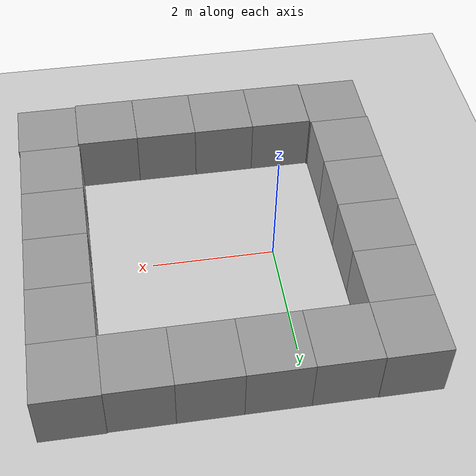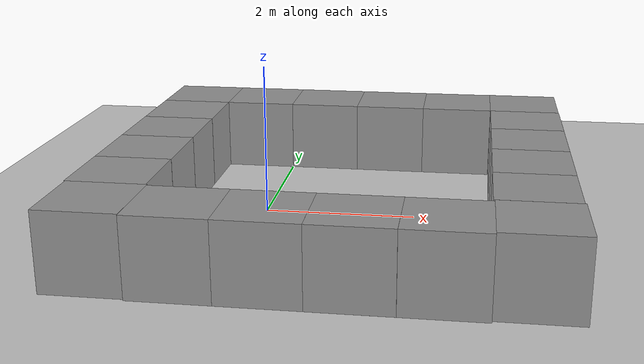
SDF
<sdf version="1.7">
 <world name="default">
  <light name="sun" type="directional">
   <pose>0 0 10 0 -0 0</pose>
   <diffuse>0.8 0.8 0.8 1</diffuse>
   <specular>0.2 0.2 0.2 1</specular>
   <attenuation>
    <range>1000</range>
    <constant>0.9</constant>
    <linear>0.01</linear>
    <quadratic>0.001</quadratic>
   </attenuation>
   <direction>-0.5 0.1 -0.9</direction>
   <spot><inner_angle>0</inner_angle><outer_angle>0</outer_angle><falloff>0</falloff></spot>
  </light>
  <model name="ground_plane">
   <static>1</static>
   <link name="link">
    <collision name="collision">
     <geometry><plane><normal>0 0 1</normal><size>100 100</size></plane></geometry>
     <surface><friction><ode><mu>100</mu><mu2>50</mu2></ode></friction></surface>
    </collision>
    <visual name="visual">
     <cast_shadows>0</cast_shadows>
     <geometry><plane><normal>0 0 1</normal><size>100 100</size></plane></geometry>
     <material>
      <script><uri>file://media/materials/scripts/gazebo.material</uri><name>Gazebo/Grey</name></script>
     </material>
    </visual>
   </link>
  </model>
  <gravity>0 0 -9.8</gravity>
  <magnetic_field>6e-06 2.3e-05 -4.2e-05</magnetic_field>
  <atmosphere type="adiabatic"/>
  <physics type="ode">
   <max_step_size>0.001</max_step_size>
   <real_time_factor>1</real_time_factor>
   <real_time_update_rate>1000</real_time_update_rate>
  </physics>
  <scene><ambient>0.4 0.4 0.4 1</ambient><background>0.7 0.7 0.7 1</background><shadows>1</shadows></scene>
  <spherical_coordinates>
   <surface_model>EARTH_WGS84</surface_model>
   <latitude_deg>0</latitude_deg>
   <longitude_deg>0</longitude_deg>
   <elevation>0</elevation>
   <heading_deg>0</heading_deg>
  </spherical_coordinates>
  <model name="unit_box">
   <pose>2.49532 2.51337 0.5 0 -0 0.000409</pose>
   <link name="link">
    <inertial>
     <mass>1</mass>
     <inertia>
      <ixx>0.166667</ixx>
      <ixy>0</ixy>
      <ixz>0</ixz>
      <iyy>0.166667</iyy>
      <iyz>0</iyz>
      <izz>0.166667</izz>
     </inertia>
    </inertial>
    <collision name="collision"><geometry><box><size>1 1 1</size></box></geometry></collision>
    <visual name="visual">
     <geometry><box><size>1 1 1</size></box></geometry>
     <material>
      <script><name>Gazebo/Grey</name><uri>file://media/materials/scripts/gazebo.material</uri></script>
     </material>
    </visual>
   </link>
  </model>
  <model name="unit_box_0">
   <pose>1.49531 2.5126 0.499995 1e-05 -0 0.000439</pose>
   <link name="link">
    <inertial>
     <mass>1</mass>
     <inertia>
      <ixx>0.166667</ixx>
      <ixy>0</ixy>
      <ixz>0</ixz>
      <iyy>0.166667</iyy>
      <iyz>0</iyz>
      <izz>0.166667</izz>
     </inertia>
    </inertial>
    <collision name="collision"><geometry><box><size>1 1 1</size></box></geometry></collision>
    <visual name="visual">
     <geometry><box><size>1 1 1</size></box></geometry>
     <material>
      <script><name>Gazebo/Grey</name><uri>file://media/materials/scripts/gazebo.material</uri></script>
     </material>
    </visual>
   </link>
  </model>
  <model name="unit_box_1">
   <pose>0.495288 2.51126 0.499995 1e-05 -0 0.000467</pose>
   <link name="link">
    <inertial>
     <mass>1</mass>
     <inertia>
      <ixx>0.166667</ixx>
      <ixy>0</ixy>
      <ixz>0</ixz>
      <iyy>0.166667</iyy>
      <iyz>0</iyz>
      <izz>0.166667</izz>
     </inertia>
    </inertial>
    <collision name="collision"><geometry><box><size>1 1 1</size></box></geometry></collision>
    <visual name="visual">
     <geometry><box><size>1 1 1</size></box></geometry>
     <material>
      <script><name>Gazebo/Grey</name><uri>file://media/materials/scripts/gazebo.material</uri></script>
     </material>
    </visual>
   </link>
  </model>
  <model name="unit_box_2">
   <pose>-0.50481 2.5103 0.5 0 -0 0.000654</pose>
   <link name="link">
    <inertial>
     <mass>1</mass>
     <inertia>
      <ixx>0.166667</ixx>
      <ixy>0</ixy>
      <ixz>0</ixz>
      <iyy>0.166667</iyy>
      <iyz>0</iyz>
      <izz>0.166667</izz>
     </inertia>
    </inertial>
    <collision name="collision"><geometry><box><size>1 1 1</size></box></geometry></collision>
    <visual name="visual">
     <geometry><box><size>1 1 1</size></box></geometry>
     <material>
      <script><name>Gazebo/Grey</name><uri>file://media/materials/scripts/gazebo.material</uri></script>
     </material>
    </visual>
   </link>
  </model>
  <model name="unit_box_3">
   <pose>3.49532 2.5257 0.5 0 -0 0.000405</pose>
   <link name="link">
    <inertial>
     <mass>1</mass>
     <inertia>
      <ixx>0.166667</ixx>
      <ixy>0</ixy>
      <ixz>0</ixz>
      <iyy>0.166667</iyy>
      <iyz>0</iyz>
      <izz>0.166667</izz>
     </inertia>
    </inertial>
    <collision name="collision"><geometry><box><size>1 1 1</size></box></geometry></collision>
    <visual name="visual">
     <geometry><box><size>1 1 1</size></box></geometry>
     <material>
      <script><name>Gazebo/Grey</name><uri>file://media/materials/scripts/gazebo.material</uri></script>
     </material>
    </visual>
   </link>
  </model>
  <model name="unit_box_4">
   <pose>3.49941 1.52565 0.499995 -0 -1e-05 0.000444</pose>
   <link name="link">
    <inertial>
     <mass>1</mass>
     <inertia>
      <ixx>0.166667</ixx>
      <ixy>0</ixy>
      <ixz>0</ixz>
      <iyy>0.166667</iyy>
      <iyz>0</iyz>
      <izz>0.166667</izz>
     </inertia>
    </inertial>
    <collision name="collision"><geometry><box><size>1 1 1</size></box></geometry></collision>
    <visual name="visual">
     <geometry><box><size>1 1 1</size></box></geometry>
     <material>
      <script><name>Gazebo/Grey</name><uri>file://media/materials/scripts/gazebo.material</uri></script>
     </material>
    </visual>
   </link>
  </model>
  <model name="unit_box_5">
   <pose>3.49911 0.525642 0.499995 -1e-05 0 0.000458</pose>
   <link name="link">
    <inertial>
     <mass>1</mass>
     <inertia>
      <ixx>0.166667</ixx>
      <ixy>0</ixy>
      <ixz>0</ixz>
      <iyy>0.166667</iyy>
      <iyz>0</iyz>
      <izz>0.166667</izz>
     </inertia>
    </inertial>
    <collision name="collision"><geometry><box><size>1 1 1</size></box></geometry></collision>
    <visual name="visual">
     <geometry><box><size>1 1 1</size></box></geometry>
     <material>
      <script><name>Gazebo/Grey</name><uri>file://media/materials/scripts/gazebo.material</uri></script>
     </material>
    </visual>
   </link>
  </model>
  <model name="unit_box_6">
   <pose>3.49918 -0.474371 0.5 0 -0 0.000464</pose>
   <link name="link">
    <inertial>
     <mass>1</mass>
     <inertia>
      <ixx>0.166667</ixx>
      <ixy>0</ixy>
      <ixz>0</ixz>
      <iyy>0.166667</iyy>
      <iyz>0</iyz>
      <izz>0.166667</izz>
     </inertia>
    </inertial>
    <collision name="collision"><geometry><box><size>1 1 1</size></box></geometry></collision>
    <visual name="visual">
     <geometry><box><size>1 1 1</size></box></geometry>
     <material>
      <script><name>Gazebo/Grey</name><uri>file://media/materials/scripts/gazebo.material</uri></script>
     </material>
    </visual>
   </link>
  </model>
  <model name="unit_box_7">
   <pose>3.49836 -1.47441 0.5 0 -0 0.000545</pose>
   <link name="link">
    <inertial>
     <mass>1</mass>
     <inertia>
      <ixx>0.166667</ixx>
      <ixy>0</ixy>
      <ixz>0</ixz>
      <iyy>0.166667</iyy>
      <iyz>0</iyz>
      <izz>0.166667</izz>
     </inertia>
    </inertial>
    <collision name="collision"><geometry><box><size>1 1 1</size></box></geometry></collision>
    <visual name="visual">
     <geometry><box><size>1 1 1</size></box></geometry>
     <material>
      <script><name>Gazebo/Grey</name><uri>file://media/materials/scripts/gazebo.material</uri></script>
     </material>
    </visual>
   </link>
  </model>
  <model name="unit_box_8">
   <pose>3.51671 -2.47463 0.499995 -1e-05 -0 0.000862</pose>
   <link name="link">
    <inertial>
     <mass>1</mass>
     <inertia>
      <ixx>0.166667</ixx>
      <ixy>0</ixy>
      <ixz>0</ixz>
      <iyy>0.166667</iyy>
      <iyz>0</iyz>
      <izz>0.166667</izz>
     </inertia>
    </inertial>
    <collision name="collision"><geometry><box><size>1 1 1</size></box></geometry></collision>
    <visual name="visual">
     <geometry><box><size>1 1 1</size></box></geometry>
     <material>
      <script><name>Gazebo/Grey</name><uri>file://media/materials/scripts/gazebo.material</uri></script>
     </material>
    </visual>
   </link>
  </model>
  <model name="unit_box_9">
   <pose>2.51666 -2.5165 0.5 0 -0 0.000832</pose>
   <link name="link">
    <inertial>
     <mass>1</mass>
     <inertia>
      <ixx>0.166667</ixx>
      <ixy>0</ixy>
      <ixz>0</ixz>
      <iyy>0.166667</iyy>
      <iyz>0</iyz>
      <izz>0.166667</izz>
     </inertia>
    </inertial>
    <collision name="collision"><geometry><box><size>1 1 1</size></box></geometry></collision>
    <visual name="visual">
     <geometry><box><size>1 1 1</size></box></geometry>
     <material>
      <script><name>Gazebo/Grey</name><uri>file://media/materials/scripts/gazebo.material</uri></script>
     </material>
    </visual>
   </link>
  </model>
  <model name="unit_box_10">
   <pose>1.51612 -2.51663 0.499995 0 1e-05 -0.00013</pose>
   <link name="link">
    <inertial>
     <mass>1</mass>
     <inertia>
      <ixx>0.166667</ixx>
      <ixy>0</ixy>
      <ixz>0</ixz>
      <iyy>0.166667</iyy>
      <iyz>0</iyz>
      <izz>0.166667</izz>
     </inertia>
    </inertial>
    <collision name="collision"><geometry><box><size>1 1 1</size></box></geometry></collision>
    <visual name="visual">
     <geometry><box><size>1 1 1</size></box></geometry>
     <material>
      <script><name>Gazebo/Grey</name><uri>file://media/materials/scripts/gazebo.material</uri></script>
     </material>
    </visual>
   </link>
  </model>
  <model name="unit_box_11">
   <pose>0.516109 -2.5152 0.499995 -1e-05 -0 -0.000132</pose>
   <link name="link">
    <inertial>
     <mass>1</mass>
     <inertia>
      <ixx>0.166667</ixx>
      <ixy>0</ixy>
      <ixz>0</ixz>
      <iyy>0.166667</iyy>
      <iyz>0</iyz>
      <izz>0.166667</izz>
     </inertia>
    </inertial>
    <collision name="collision"><geometry><box><size>1 1 1</size></box></geometry></collision>
    <visual name="visual">
     <geometry><box><size>1 1 1</size></box></geometry>
     <material>
      <script><name>Gazebo/Grey</name><uri>file://media/materials/scripts/gazebo.material</uri></script>
     </material>
    </visual>
   </link>
  </model>
  <model name="unit_box_12">
   <pose>-0.483925 -2.5145 0.499995 0 -1e-05 -0.000123</pose>
   <link name="link">
    <inertial>
     <mass>1</mass>
     <inertia>
      <ixx>0.166667</ixx>
      <ixy>0</ixy>
      <ixz>0</ixz>
      <iyy>0.166667</iyy>
      <iyz>0</iyz>
      <izz>0.166667</izz>
     </inertia>
    </inertial>
    <collision name="collision"><geometry><box><size>1 1 1</size></box></geometry></collision>
    <visual name="visual">
     <geometry><box><size>1 1 1</size></box></geometry>
     <material>
      <script><name>Gazebo/Grey</name><uri>file://media/materials/scripts/gazebo.material</uri></script>
     </material>
    </visual>
   </link>
  </model>
  <model name="unit_box_13">
   <pose>-1.50524 2.51451 0.5 0 -0 0.000465</pose>
   <link name="link">
    <inertial>
     <mass>1</mass>
     <inertia>
      <ixx>0.166667</ixx>
      <ixy>0</ixy>
      <ixz>0</ixz>
      <iyy>0.166667</iyy>
      <iyz>0</iyz>
      <izz>0.166667</izz>
     </inertia>
    </inertial>
    <collision name="collision"><geometry><box><size>1 1 1</size></box></geometry></collision>
    <visual name="visual">
     <geometry><box><size>1 1 1</size></box></geometry>
     <material>
      <script><name>Gazebo/Grey</name><uri>file://media/materials/scripts/gazebo.material</uri></script>
     </material>
    </visual>
   </link>
  </model>
  <model name="unit_box_14">
   <pose>-1.505 1.51451 0.5 0 -0 0.000465</pose>
   <link name="link">
    <inertial>
     <mass>1</mass>
     <inertia>
      <ixx>0.166667</ixx>
      <ixy>0</ixy>
      <ixz>0</ixz>
      <iyy>0.166667</iyy>
      <iyz>0</iyz>
      <izz>0.166667</izz>
     </inertia>
    </inertial>
    <collision name="collision"><geometry><box><size>1 1 1</size></box></geometry></collision>
    <visual name="visual">
     <geometry><box><size>1 1 1</size></box></geometry>
     <material>
      <script><name>Gazebo/Grey</name><uri>file://media/materials/scripts/gazebo.material</uri></script>
     </material>
    </visual>
   </link>
  </model>
  <model name="unit_box_15">
   <pose>-1.50468 0.514497 0.499995 0 1e-05 0.000444</pose>
   <link name="link">
    <inertial>
     <mass>1</mass>
     <inertia>
      <ixx>0.166667</ixx>
      <ixy>0</ixy>
      <ixz>0</ixz>
      <iyy>0.166667</iyy>
      <iyz>0</iyz>
      <izz>0.166667</izz>
     </inertia>
    </inertial>
    <collision name="collision"><geometry><box><size>1 1 1</size></box></geometry></collision>
    <visual name="visual">
     <geometry><box><size>1 1 1</size></box></geometry>
     <material>
      <script><name>Gazebo/Grey</name><uri>file://media/materials/scripts/gazebo.material</uri></script>
     </material>
    </visual>
   </link>
  </model>
  <model name="unit_box_16">
   <pose>-1.50443 -0.485515 0.5 0 -0 0.00043</pose>
   <link name="link">
    <inertial>
     <mass>1</mass>
     <inertia>
      <ixx>0.166667</ixx>
      <ixy>0</ixy>
      <ixz>0</ixz>
      <iyy>0.166667</iyy>
      <iyz>0</iyz>
      <izz>0.166667</izz>
     </inertia>
    </inertial>
    <collision name="collision"><geometry><box><size>1 1 1</size></box></geometry></collision>
    <visual name="visual">
     <geometry><box><size>1 1 1</size></box></geometry>
     <material>
      <script><name>Gazebo/Grey</name><uri>file://media/materials/scripts/gazebo.material</uri></script>
     </material>
    </visual>
   </link>
  </model>
  <model name="unit_box_17">
   <pose>-1.50468 -1.48552 0.5 0 -0 0.000429</pose>
   <link name="link">
    <inertial>
     <mass>1</mass>
     <inertia>
      <ixx>0.166667</ixx>
      <ixy>0</ixy>
      <ixz>0</ixz>
      <iyy>0.166667</iyy>
      <iyz>0</iyz>
      <izz>0.166667</izz>
     </inertia>
    </inertial>
    <collision name="collision"><geometry><box><size>1 1 1</size></box></geometry></collision>
    <visual name="visual">
     <geometry><box><size>1 1 1</size></box></geometry>
     <material>
      <script><name>Gazebo/Grey</name><uri>file://media/materials/scripts/gazebo.material</uri></script>
     </material>
    </visual>
   </link>
  </model>
  <model name="unit_box_18">
   <pose>-1.48617 -2.48553 0.5 0 -0 0.000398</pose>
   <link name="link">
    <inertial>
     <mass>1</mass>
     <inertia>
      <ixx>0.166667</ixx>
      <ixy>0</ixy>
      <ixz>0</ixz>
      <iyy>0.166667</iyy>
      <iyz>0</iyz>
      <izz>0.166667</izz>
     </inertia>
    </inertial>
    <collision name="collision"><geometry><box><size>1 1 1</size></box></geometry></collision>
    <visual name="visual">
     <geometry><box><size>1 1 1</size></box></geometry>
     <material>
      <script><name>Gazebo/Grey</name><uri>file://media/materials/scripts/gazebo.material</uri></script>
     </material>
    </visual>
   </link>
  </model>
 </world>
</sdf>
